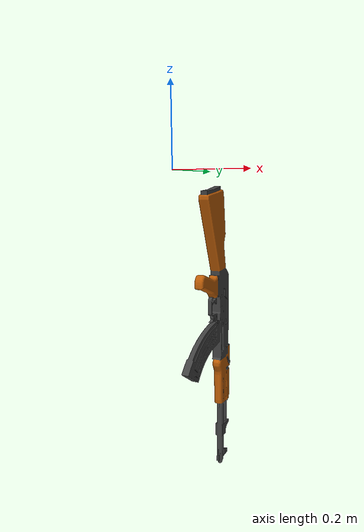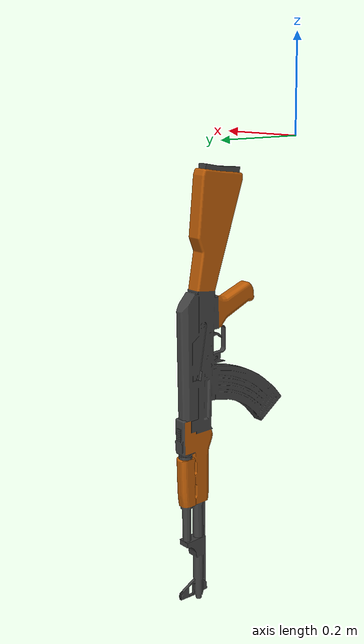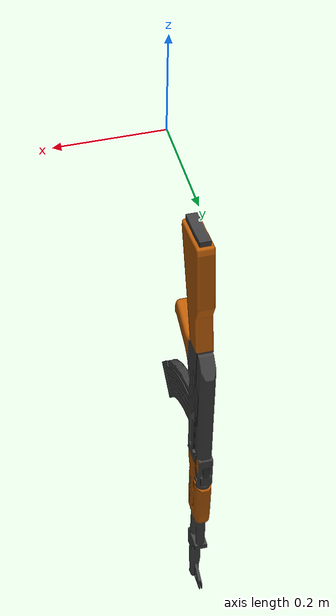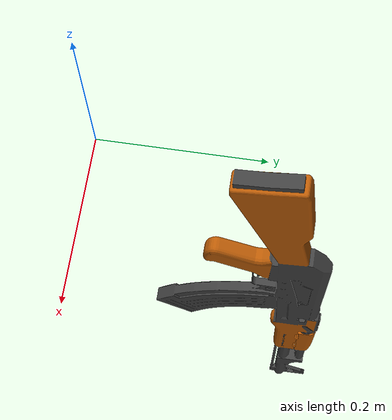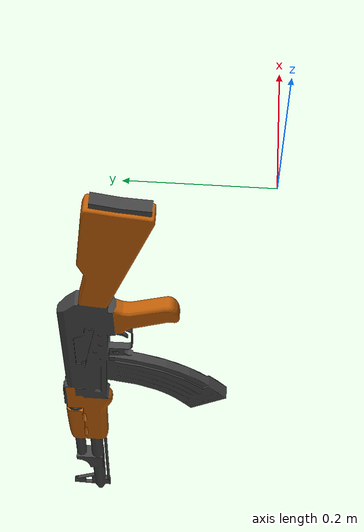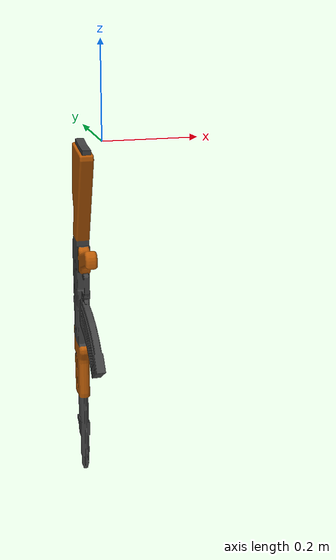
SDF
<?xml version="1.0" ?>
<sdf version="1.6">
  <model name="gun">
    <static>true</static>
    <link name="link">
      <collision name="collision">
        <geometry>
          <mesh>
            <uri>model://gun/meshes/gun.dae</uri>
            <scale>2 2 2</scale>
          </mesh>
        </geometry>
      </collision>
      <visual name="visual">
        <geometry>
          <mesh>
            <uri>model://gun/meshes/gun.dae</uri>
            <scale>2 2 2</scale>
          </mesh>
        </geometry>
      </visual>
    </link>
  </model>
</sdf>
